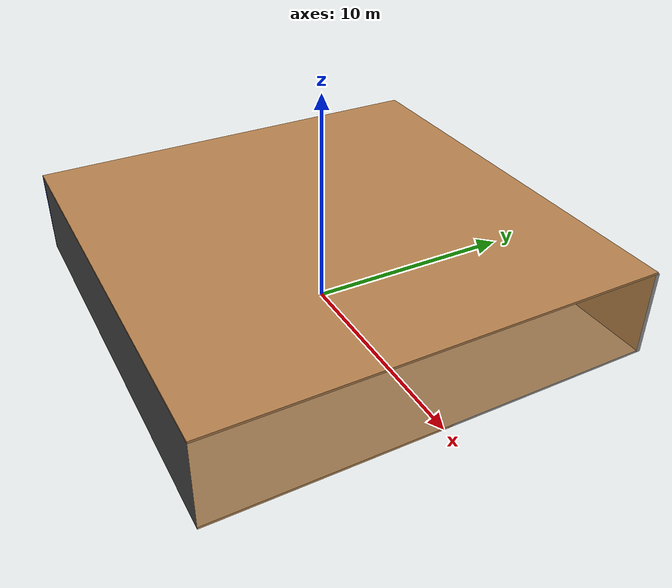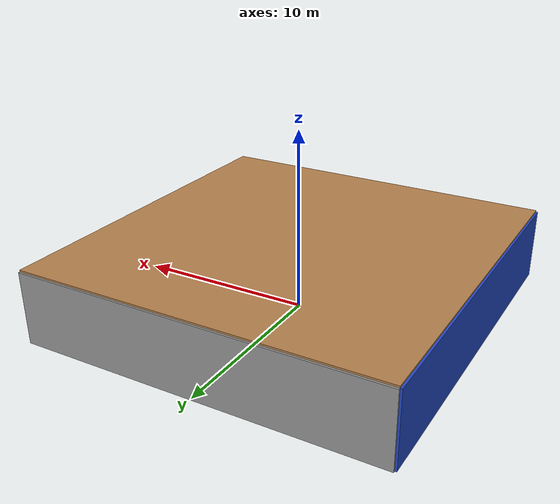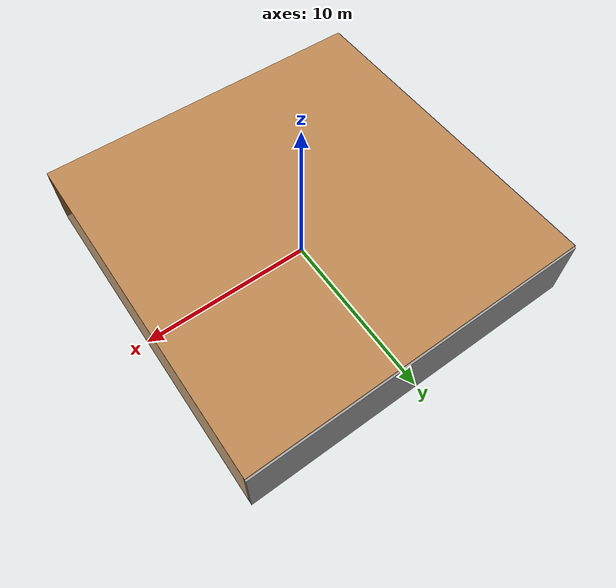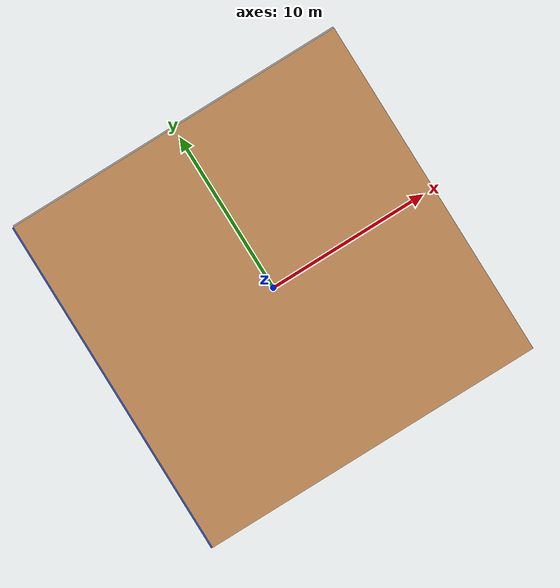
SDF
<sdf version="1.4">
 <world name="default">
  <physics type="ode">
   <max_step_size>0.001</max_step_size>
   <real_time_factor>1</real_time_factor>
   <real_time_update_rate>1000</real_time_update_rate>
   <gravity>0 0 -9.8</gravity>
  </physics>
  <scene><ambient>0.4 0.4 0.4 1</ambient><background>0.7 0.7 0.7 1</background><shadows>1</shadows></scene>
  <model name="Surrounding">
   <static>1</static>
   <link name="Ceiling">
    <collision name="Ceiling_Collision"><geometry><box><size>20 20 0.1</size></box></geometry></collision>
    <visual name="Ceiling_Visual">
     <geometry><box><size>20 20 0.1</size></box></geometry>
     <material>
      <script><uri>file://media/materials/scripts/gazebo.material</uri><name>Gazebo/WoodFloor</name></script>
     </material>
    </visual>
    <pose>0 0 4.05 0 0 0</pose>
   </link>
   <link name="Wall_South">
    <collision name="Wall_South_Collision">
     <geometry><box><size>20 0 4</size></box></geometry>
     <pose>0 0 2 0 -0 0</pose>
    </collision>
    <visual name="Wall_South_Visual">
     <pose>0 0 2 0 -0 0</pose>
     <geometry><box><size>20 0 4</size></box></geometry>
     <material>
      <script><uri>file://media/materials/scripts/gazebo.material</uri><name>Gazebo/DarkGrey</name></script>
     </material>
    </visual>
    <velocity_decay><linear>0</linear><angular>0</angular></velocity_decay>
    <pose>0 -10 0 0 -0 0</pose>
   </link>
   <link name="Wall_East">
    <collision name="Wall_21_Collision">
     <geometry><box><size>20 0 4</size></box></geometry>
     <pose>0 0 2 0 -0 0</pose>
    </collision>
    <visual name="Wall_21_Visual">
     <pose>0 0 2 0 -0 0</pose>
     <geometry><box><size>20 0 4</size></box></geometry>
     <material>
      <script>
       <uri>file://media/materials/scripts/gazebo.material</uri>
       <name>Gazebo/OrangeTransparent</name>
      </script>
     </material>
    </visual>
    <velocity_decay><linear>0</linear><angular>0</angular></velocity_decay>
    <pose>10 0 0 0 -0 1.5708</pose>
   </link>
   <link name="Wall_North">
    <collision name="Wall_22_Collision">
     <geometry><box><size>20 0.2 4</size></box></geometry>
     <pose>0 0 2 0 -0 0</pose>
    </collision>
    <visual name="Wall_22_Visual">
     <pose>0 0 2 0 -0 0</pose>
     <geometry><box><size>20 0.2 4</size></box></geometry>
     <material>
      <script><uri>file://media/materials/scripts/gazebo.material</uri><name>Gazebo/GreyGradientSky</name></script>
     </material>
    </visual>
    <velocity_decay><linear>0</linear><angular>0</angular></velocity_decay>
    <pose>0 10 0 0 -0 0</pose>
   </link>
   <link name="Wall_West">
    <collision name="Wall_23_Collision">
     <geometry><box><size>20 0.2 4</size></box></geometry>
     <pose>0 0 2 0 -0 0</pose>
    </collision>
    <visual name="Wall_23_Visual">
     <pose>0 0 2 0 -0 0</pose>
     <geometry><box><size>20 0.2 4</size></box></geometry>
     <material>
      <script><uri>file://media/materials/scripts/gazebo.material</uri><name>Gazebo/BlueGlow</name></script>
     </material>
    </visual>
    <velocity_decay><linear>0</linear><angular>0</angular></velocity_decay>
    <pose>-10 0 0 0 0 -1.5708</pose>
   </link>
   <link name="Ground_link">
    <collision name="collision">
     <pose>0 0 .05 0 -0 0</pose>
     <geometry><box><size>20 20 0.1</size></box></geometry>
    </collision>
    <visual name="visual">
     <pose>0 0 .05 0 -0 0</pose>
     <geometry><box><size>20 20 0.1</size></box></geometry>
     <material>
      <script><uri>file://media/materials/scripts/gazebo.material</uri><name>Gazebo/Grey</name></script>
     </material>
    </visual>
   </link>
   <static>1</static>
  </model>
  <spherical_coordinates>
   <surface_model>EARTH_WGS84</surface_model>
   <latitude_deg>0</latitude_deg>
   <longitude_deg>0</longitude_deg>
   <elevation>0</elevation>
   <heading_deg>0</heading_deg>
  </spherical_coordinates>
  <light name="lightball_0" type="diffuse">
   <diffuse>0.8 0.8 0.8 1</diffuse>
   <specular>0.2 0.2 0.2 1</specular>
   <attenuation>
    <range>100</range>
    <constant>0.7</constant>
    <linear>0.01</linear>
    <quadratic>0.001</quadratic>
   </attenuation>
   <direction>-0.5 0.1 -0.9</direction>
   <pose>-6.73651179384 -7.66600391576 1.86248726407 0 0 0</pose>
  </light>
  <light name="lightball_1" type="diffuse">
   <diffuse>0.8 0.8 0.8 1</diffuse>
   <specular>0.2 0.2 0.2 1</specular>
   <attenuation>
    <range>100</range>
    <constant>0.7</constant>
    <linear>0.01</linear>
    <quadratic>0.001</quadratic>
   </attenuation>
   <direction>-0.5 0.1 -0.9</direction>
   <pose>5.39162500905 -3.06386441875 3.67018957718 0 0 0</pose>
  </light>
  <light name="lightball_2" type="diffuse">
   <diffuse>0.8 0.8 0.8 1</diffuse>
   <specular>0.2 0.2 0.2 1</specular>
   <attenuation>
    <range>100</range>
    <constant>0.7</constant>
    <linear>0.01</linear>
    <quadratic>0.001</quadratic>
   </attenuation>
   <direction>-0.5 0.1 -0.9</direction>
   <pose>-4.44285220851 7.58850787167 0.922529116657 0 0 0</pose>
  </light>
  <light name="lightball_3" type="diffuse">
   <diffuse>0.8 0.8 0.8 1</diffuse>
   <specular>0.2 0.2 0.2 1</specular>
   <attenuation>
    <range>100</range>
    <constant>0.7</constant>
    <linear>0.01</linear>
    <quadratic>0.001</quadratic>
   </attenuation>
   <direction>-0.5 0.1 -0.9</direction>
   <pose>-2.55854544318 1.89652536131 2.17559657097 0 0 0</pose>
  </light>
  <light name="lightball_4" type="diffuse">
   <diffuse>0.8 0.8 0.8 1</diffuse>
   <specular>0.2 0.2 0.2 1</specular>
   <attenuation>
    <range>100</range>
    <constant>0.7</constant>
    <linear>0.01</linear>
    <quadratic>0.001</quadratic>
   </attenuation>
   <direction>-0.5 0.1 -0.9</direction>
   <pose>8.56516959633 -7.28779264442 0.862562296132 0 0 0</pose>
  </light>
  <light name="lightball_5" type="diffuse">
   <diffuse>0.8 0.8 0.8 1</diffuse>
   <specular>0.2 0.2 0.2 1</specular>
   <attenuation>
    <range>100</range>
    <constant>0.7</constant>
    <linear>0.01</linear>
    <quadratic>0.001</quadratic>
   </attenuation>
   <direction>-0.5 0.1 -0.9</direction>
   <pose>3.22858612453 -7.67738969708 1.39796962755 0 0 0</pose>
  </light>
  <light name="lightball_6" type="diffuse">
   <diffuse>0.8 0.8 0.8 1</diffuse>
   <specular>0.2 0.2 0.2 1</specular>
   <attenuation>
    <range>100</range>
    <constant>0.7</constant>
    <linear>0.01</linear>
    <quadratic>0.001</quadratic>
   </attenuation>
   <direction>-0.5 0.1 -0.9</direction>
   <pose>-1.85426520227 4.67195644014 1.87142361146 0 0 0</pose>
  </light>
  <light name="lightball_7" type="diffuse">
   <diffuse>0.8 0.8 0.8 1</diffuse>
   <specular>0.2 0.2 0.2 1</specular>
   <attenuation>
    <range>100</range>
    <constant>0.7</constant>
    <linear>0.01</linear>
    <quadratic>0.001</quadratic>
   </attenuation>
   <direction>-0.5 0.1 -0.9</direction>
   <pose>-2.88859881057 6.91555891418 2.70136740426 0 0 0</pose>
  </light>
  <include><uri>model://table</uri><pose>-7.30622946467 -7.46487765085 0 0 0 1.1984429498</pose></include>
  <include>
   <uri>model://textured_shapes</uri>
   <pose>-8.22594597642 -1.79943035565 0 0 0 0.798410521849</pose>
  </include>
  <include><uri>model://cabinet</uri><pose>-4.01343636574 3.61723450891 0 0 0 1.19588640325</pose></include>
  <include><uri>model://cabinet</uri><pose>-0.516859434193 -5.4273870407 0 0 0 2.26947655546</pose></include>
  <include>
   <uri>model://textured_shapes</uri>
   <pose>-0.364677761733 7.13640855151 0 0 0 2.08501680981</pose>
  </include>
  <include>
   <uri>model://construction_cone</uri>
   <pose>1.75377085835 4.75306425691 0 0 0 3.01356022838</pose>
  </include>
  <include>
   <uri>model://textured_shapes</uri>
   <pose>4.09847747009 4.4579116985 0 0 0 1.98703664299</pose>
  </include>
 </world>
</sdf>

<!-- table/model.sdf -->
<sdf version="1.5">
  <model name="table">
    <static>true</static>
    <link name="link">
      <collision name="surface">
        <pose>0 0 1.0 0 0 0</pose>
        <geometry>
          <box>
            <size>1.5 0.8 0.03</size>
          </box>
        </geometry>
        <surface>
          <friction>
            <ode>
              <mu>0.6</mu>
              <mu2>0.6</mu2>
            </ode>
          </friction>
        </surface>
      </collision>
      <visual name="visual1">
        <pose>0 0 1.0 0 0 0</pose>
        <geometry>
          <box>
            <size>1.5 0.8 0.03</size>
          </box>
        </geometry>
        <material>
          <script>
            <uri>model://media/materials/scripts/gazebo.material</uri>
            <name>Gazebo/Wood</name>
          </script>
        </material>
      </visual>
      <collision name="front_left_leg">
        <pose>0.68 0.38 0.5 0 0 0</pose>
        <geometry>
          <cylinder>
            <radius>0.02</radius>
            <length>1.0</length>
          </cylinder>
        </geometry>
      </collision>
      <visual name="front_left_leg">
        <pose>0.68 0.38 0.5 0 0 0</pose>
        <geometry>
          <cylinder>
            <radius>0.02</radius>
            <length>1.0</length>
          </cylinder>
        </geometry>
        <material>
          <script>
            <uri>model://media/materials/scripts/gazebo.material</uri>
            <name>Gazebo/Grey</name>
          </script>
        </material>
      </visual>
      <collision name="front_right_leg">
        <pose>0.68 -0.38 0.5 0 0 0</pose>
        <geometry>
          <cylinder>
            <radius>0.02</radius>
            <length>1.0</length>
          </cylinder>
        </geometry>
      </collision>
      <visual name="front_right_leg">
        <pose>0.68 -0.38 0.5 0 0 0</pose>
        <geometry>
          <cylinder>
            <radius>0.02</radius>
            <length>1.0</length>
          </cylinder>
        </geometry>
        <material>
          <script>
            <uri>model://media/materials/scripts/gazebo.material</uri>
            <name>Gazebo/Grey</name>
          </script>
        </material>
      </visual>
      <collision name="back_right_leg">
        <pose>-0.68 -0.38 0.5 0 0 0</pose>
        <geometry>
          <cylinder>
            <radius>0.02</radius>
            <length>1.0</length>
          </cylinder>
        </geometry>
      </collision>
      <visual name="back_right_leg">
        <pose>-0.68 -0.38 0.5 0 0 0</pose>
        <geometry>
          <cylinder>
            <radius>0.02</radius>
            <length>1.0</length>
          </cylinder>
        </geometry>
        <material>
          <script>
            <uri>model://media/materials/scripts/gazebo.material</uri>
            <name>Gazebo/Grey</name>
          </script>
        </material>
      </visual>
      <collision name="back_left_leg">
        <pose>-0.68 0.38 0.5 0 0 0</pose>
        <geometry>
          <cylinder>
            <radius>0.02</radius>
            <length>1.0</length>
          </cylinder>
        </geometry>
      </collision>
      <visual name="back_left_leg">
        <pose>-0.68 0.38 0.5 0 0 0</pose>
        <geometry>
          <cylinder>
            <radius>0.02</radius>
            <length>1.0</length>
          </cylinder>
        </geometry>
        <material>
          <script>
            <uri>model://media/materials/scripts/gazebo.material</uri>
            <name>Gazebo/Grey</name>
          </script>
        </material>
      </visual>
    </link>
  </model>
</sdf>

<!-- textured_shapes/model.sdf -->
<sdf version="1.6">
  <model name="textured_shapes">
    <pose>0 0 0.5 0 0 0</pose>
    <link name="box">
      <pose>0 -1.5 0 0 0 0</pose>
      <collision name="collision">
        <geometry>
          <box>
            <size>1 1 1</size>
          </box>
        </geometry>
      </collision>
      <visual name="visual">
        <geometry>
          <box>
            <size>1 1 1</size>
          </box>
        </geometry>
        <material>
          <script>
            <uri>model://../model_source/models/textured_shapes/materials/scripts</uri>
            <uri>model://../model_source/models/textured_shapes/materials/textures</uri>
            <name>TexturedShape/Squares</name>
          </script>
        </material>
      </visual>
    </link>
    <link name="sphere">
      <collision name="collision">
        <geometry>
          <sphere>
            <radius>0.5</radius>
          </sphere>
        </geometry>
      </collision>
      <visual name="visual">
        <geometry>
          <sphere>
            <radius>0.5</radius>
          </sphere>
        </geometry>
        <material>
          <script>
            <uri>model://../model_source/models/textured_shapes/materials/scripts</uri>
            <uri>model://../model_source/models/textured_shapes/materials/textures</uri>
            <name>TexturedShape/Squares</name>
          </script>
        </material>
      </visual>
    </link>
    <link name="cylinder">
      <pose>0 1.5 0 0 0 0</pose>
      <collision name="collision">
        <geometry>
          <cylinder>
            <radius>0.5</radius>
            <length>1</length>
          </cylinder>
        </geometry>
      </collision>
      <visual name="visual">
        <geometry>
          <cylinder>
            <radius>0.5</radius>
            <length>1</length>
          </cylinder>
        </geometry>
        <material>
          <script>
            <uri>model://../model_source/models/textured_shapes/materials/scripts</uri>
            <uri>model://../model_source/models/textured_shapes/materials/textures</uri>
            <name>TexturedShape/Squares</name>
          </script>
        </material>
      </visual>
    </link>
  </model>
</sdf>

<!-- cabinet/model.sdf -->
<sdf version="1.5">
  <model name="cabinet">
    <static>true</static>
    <link name="cabinet_bottom_plate">
      <inertial>
        <pose>0 0 -1 0 0 0</pose>
        <inertia>
          <ixx>2.050000</ixx>
          <ixy>0</ixy>
          <ixz>0</ixz>
          <iyy>2.050000</iyy>
          <iyz>0</iyz>
          <izz>2.050000</izz>
        </inertia>
        <mass>25.000000</mass>
      </inertial>
      <collision name="cabinet_bottom_plate_geom">
        <pose>0 0 0.010000 0 0 0</pose>
        <geometry>
          <box>
            <size>0.450000 0.450000 0.020000</size>
          </box>
        </geometry>
      </collision>
      <visual name="cabinet_bottom_plate_geom_visual">
        <pose>0 0 0.010000 0 0 0</pose>
        <geometry>
          <box>
            <size>0.450000 0.450000 0.020000</size>
          </box>
        </geometry>
        <material>
          <script>
            <uri>model://media/materials/scripts/gazebo.material</uri>
            <name>Gazebo/Wood</name>
          </script>
        </material>
      </visual>
      <collision name="cabinet_bottom_plate_geom_cabinet_back_plate">
        <pose>0.235000 0 0.510000 0 0 0</pose>
        <geometry>
          <box>
            <size>0.020000 0.450000 1.020000</size>
          </box>
        </geometry>
      </collision>
      <visual name="cabinet_bottom_plate_geom_cabinet_back_plate_visual">
        <pose>0.235000 0 0.510000 0 0 0</pose>
        <geometry>
          <box>
            <size>0.020000 0.450000 1.020000</size>
          </box>
        </geometry>
        <material>
          <script>
            <uri>model://media/materials/scripts/gazebo.material</uri>
            <name>Gazebo/Wood</name>
          </script>
        </material>
      </visual>
      <collision name="cabinet_bottom_plate_geom_cabinet_left_plate">
        <pose>0 0.235000 0.510000 0 0 0</pose>
        <geometry>
          <box>
            <size>0.450000 0.020000 1.020000</size>
          </box>
        </geometry>
      </collision>
      <visual name="cabinet_bottom_plate_geom_cabinet_left_plate_visual">
        <pose>0 0.235000 0.510000 0 0 0</pose>
        <geometry>
          <box>
            <size>0.450000 0.020000 1.020000</size>
          </box>
        </geometry>
        <material>
          <script>
            <uri>model://media/materials/scripts/gazebo.material</uri>
            <name>Gazebo/Wood</name>
          </script>
        </material>
      </visual>
      <collision name="cabinet_bottom_plate_geom_cabinet_middle_plate">
        <pose>0 0 0.510000 0 0 0</pose>
        <geometry>
          <box>
            <size>0.450000 0.450000 0.020000</size>
          </box>
        </geometry>
      </collision>
      <visual name="cabinet_bottom_plate_geom_cabinet_middle_plate_visual">
        <pose>0 0 0.510000 0 0 0</pose>
        <geometry>
          <box>
            <size>0.450000 0.450000 0.020000</size>
          </box>
        </geometry>
        <material>
          <script>
            <uri>model://media/materials/scripts/gazebo.material</uri>
            <name>Gazebo/Wood</name>
          </script>
        </material>
      </visual>
      <collision name="cabinet_bottom_plate_geom_cabinet_right_plate">
        <pose>0 -0.235000 0.510000 0 0 0</pose>
        <geometry>
          <box>
            <size>0.450000 0.020000 1.020000</size>
          </box>
        </geometry>
      </collision>
      <visual name="cabinet_bottom_plate_geom_cabinet_right_plate_visual">
        <pose>0 -0.235000 0.510000 0 0 0</pose>
        <geometry>
          <box>
            <size>0.450000 0.020000 1.020000</size>
          </box>
        </geometry>
        <material>
          <script>
            <uri>model://media/materials/scripts/gazebo.material</uri>
            <name>Gazebo/Wood</name>
          </script>
        </material>
      </visual>
      <collision name="cabinet_bottom_plate_geom_cabinet_top_plate">
        <pose>0 0 1.010000 0 0 0</pose>
        <geometry>
          <box>
            <size>0.450000 0.450000 0.020000</size>
          </box>
        </geometry>
      </collision>
      <visual name="cabinet_bottom_plate_geom_cabinet_top_plate_visual">
        <pose>0 0 1.010000 0 0 0</pose>
        <geometry>
          <box>
            <size>0.450000 0.450000 0.020000</size>
          </box>
        </geometry>
        <material>
          <script>
            <uri>model://media/materials/scripts/gazebo.material</uri>
            <name>Gazebo/Wood</name>
          </script>
        </material>
      </visual>
    </link>
  </model>
</sdf>

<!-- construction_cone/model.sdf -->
<sdf version="1.5">
  <model name="Construction Cone">
    <link name="link">
      <collision name="collision">
        <geometry>
          <mesh>
            <scale>10 10 10</scale>
            <uri>file://isr-testbed/construction_cone/meshes/construction_cone.dae</uri>
          </mesh>
        </geometry>
      </collision>
      <visual name="visual">
        <geometry>
          <mesh>
            <scale>10 10 10</scale>
            <uri>file://isr-testbed/construction_cone/meshes/construction_cone.dae</uri>
          </mesh>
        </geometry>
      </visual>
    </link>
  </model>
</sdf>
